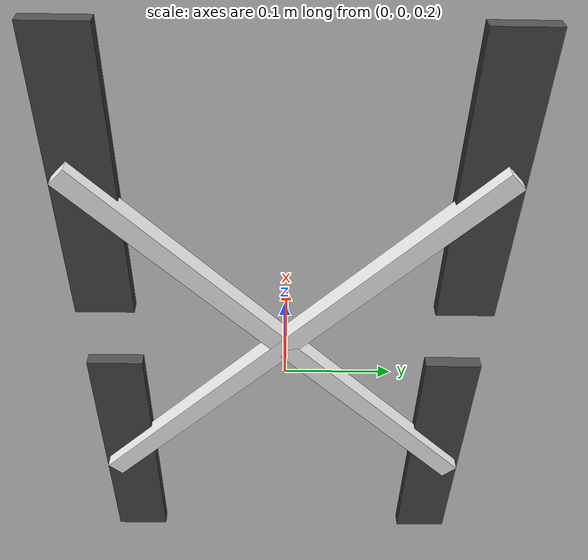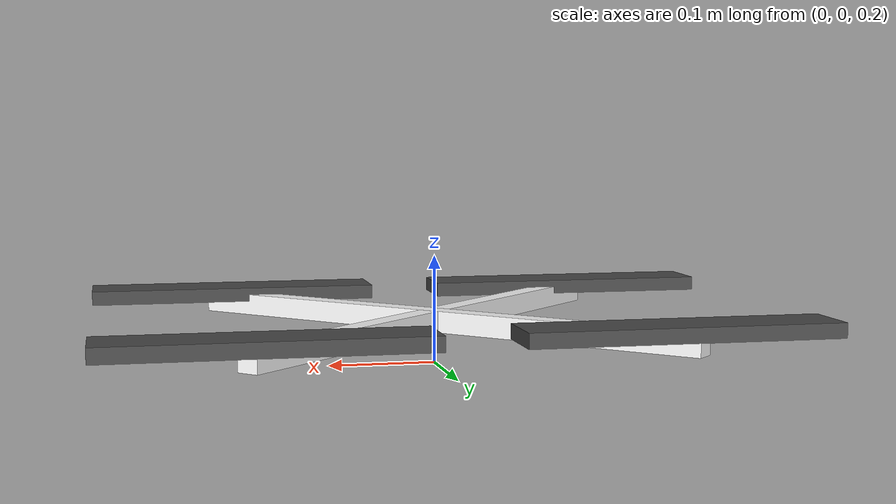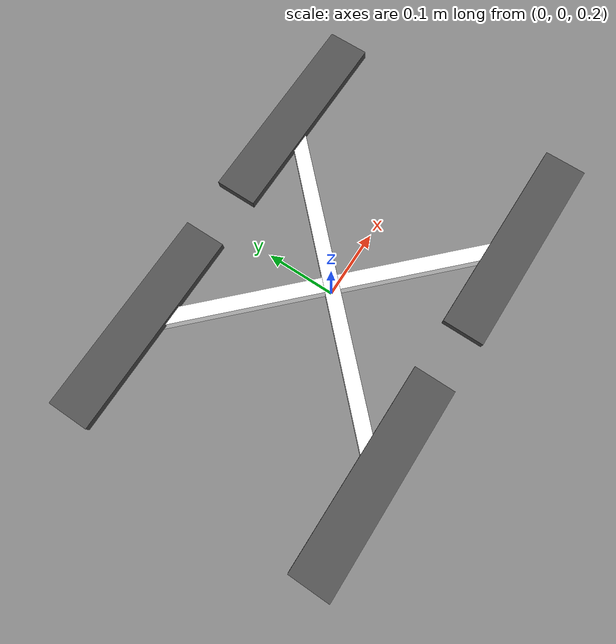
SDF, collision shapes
<?xml version="1.0" encoding="UTF-8"?>
<sdf version='1.9'>
  <model name='custom'>
    <pose>0 0 .24 0 0 0</pose>
    <self_collide>false</self_collide>
    <static>false</static>
    <link name="base_link">
      <inertial>
        <mass>2.0</mass>
        <inertia>
          <ixx>0.02166666666666667</ixx>
          <ixy>0</ixy>
          <ixz>0</ixz>
          <iyy>0.02166666666666667</iyy>
          <iyz>0</iyz>
          <izz>0.04000000000000001</izz>
        </inertia>
      </inertial>
      <gravity>true</gravity>
      <velocity_decay/>
      <visual name="napoli">
        <pose>0 0 .013 0 0 0</pose>
        <cast_shadows>false</cast_shadows>
        <geometry>
          <plane>
            <normal>0 0 1</normal>
            <size>.13 .14</size>
          </plane>
        </geometry>
        <material>
          <diffuse>1.0 1.0 1.0</diffuse>
          <specular>1.0 1.0 1.0</specular>
          <pbr>
            <metal>
              <albedo_map>model://custom/materials/textures/napoli.png</albedo_map>
            </metal>
          </pbr>
        </material>
      </visual>
      <visual name="stick_visual1">
        <pose>0 0 0 0 0 -0.785398</pose>
        <geometry>
          <box>
            <size>0.54 0.02 0.02</size>
          </box>
        </geometry>
      </visual>
      <visual name="stick_visual2">
        <pose>0 0 0 0 0 0.785398</pose>
        <geometry>
          <box>
            <size>0.54 0.02 0.02</size>
          </box>
        </geometry>
      </visual>
      <collision name="stick_collision_1_test">
      <pose>0 0 0 0 0 -0.785398</pose>
        <geometry>
          <box>
            <size>0.54 0.02 0.02</size>
          </box>
        </geometry>
      </collision>
      <collision name="stick_collision_2_test">
        <pose>0 0 0 0 0 0.785398</pose>
          <geometry>
            <box>
              <size>0.54 0.02 0.02</size>
            </box>
          </geometry>
      </collision>

      <sensor name="air_pressure_sensor" type="air_pressure">
        <always_on>1</always_on>
        <update_rate>50</update_rate>
        <air_pressure>
          <!-- Noise modeled after BMP390 -->
          <pressure>
            <noise type="gaussian">
              <mean>0</mean>
              <stddev>3</stddev>
            </noise>
          </pressure>
        </air_pressure>
      </sensor>
      <sensor name="magnetometer_sensor" type="magnetometer">
        <always_on>1</always_on>
        <update_rate>100</update_rate>
        <magnetometer>
          <!-- TODO: update to fix units and coordinate system when we move past Harmonic -->
          <!-- See https://github.com/gazebosim/gz-sim/pull/2460 -->
          <!-- 3mgauss RMS: NOTE: noise is in tesla but sensor reports data in gauss -->
          <!-- Noise modeled after IIS2MDC -->
          <x>
            <noise type="gaussian">
              <stddev>0.0001</stddev>
            </noise>
          </x>
          <y>
            <noise type="gaussian">
              <stddev>0.0001</stddev>
            </noise>
          </y>
          <z>
            <noise type="gaussian">
              <stddev>0.0001</stddev>
            </noise>
          </z>
        </magnetometer>
      </sensor>
      <sensor name="imu_sensor" type="imu">
        <always_on>1</always_on>
        <update_rate>250</update_rate>
        <imu>
          <angular_velocity>
            <!-- Noise modeled after IIM42653 -->
            <!-- 0.05 deg/s converted to rad/s -->
            <x>
              <noise type="gaussian">
                <mean>0.0</mean>
                <stddev>0.0008726646</stddev>
              </noise>
            </x>
            <y>
              <noise type="gaussian">
                <mean>0.0</mean>
                <stddev>0.0008726646</stddev>
              </noise>
            </y>
            <z>
              <noise type="gaussian">
                <mean>0.0</mean>
                <stddev>0.0008726646</stddev>
              </noise>
            </z>
          </angular_velocity>
          <linear_acceleration>
            <!-- Noise modeled after IIM42653 -->
            <!-- X & Y axis: 0.65 mg-rms converted to m/ss -->
            <x>
              <noise type="gaussian">
                <mean>0.0</mean>
                <stddev>0.00637</stddev>
              </noise>
            </x>
            <y>
              <noise type="gaussian">
                <mean>0.0</mean>
                <stddev>0.00637</stddev>
              </noise>
            </y>
            <!-- Z axis: 0.70 mg-rms converted to m/ss-->
            <z>
              <noise type="gaussian">
                <mean>0.0</mean>
                <stddev>0.00686</stddev>
              </noise>
            </z>
          </linear_acceleration>
        </imu>
      </sensor>
      <sensor name="navsat_sensor" type="navsat">
        <always_on>1</always_on>
        <update_rate>30</update_rate>
      </sensor>
    </link>
    <link name="rotor_0">
      <gravity>true</gravity>
      <self_collide>false</self_collide>
      <velocity_decay/>
      <pose>0.174 -0.174 0.04 0 0 0</pose>
      <inertial>
          <mass>0.016076923076923075</mass>
          <inertia>
            <ixx>3.8464910483993325e-07</ixx>
            <iyy>2.6115851691700804e-05</iyy>
            <izz>2.649858234714004e-05</izz>
          </inertia>
        </inertial>
      <visual name="rotor_0_visual">
        <pose>-0.022 -0.14638461538461536 -0.016 0 0 0</pose>
        <geometry>
          <mesh>
            <scale>0.8461538461538461 0.8461538461538461 0.8461538461538461</scale>
            <uri>model://custom/meshes/1345_prop_ccw.stl</uri>
          </mesh>
        </geometry>
        <material>
          <script>
            <name>Gazebo/DarkGrey</name>
            <uri>file://media/materials/scripts/gazebo.material</uri>
          </script>
        </material>
      </visual>
      <visual name="rotor_0_visual_motor_bell">
        <pose>0 0 -.032 0 0 0</pose>
        <geometry>
          <mesh>
            <scale>1 1 1</scale>
            <uri>model://custom/meshes/5010Bell.dae</uri>
          </mesh>
        </geometry>
      </visual>
      <collision name="rotor_0_collision">
        <pose>0 0 -0.03 0 0 0 </pose>
        <geometry>
          <box>
            <size>0.2792307692307692 0.056923076923076923 0.013461538461538462</size>
          </box>
        </geometry>
      </collision>
    </link>
    <joint name="rotor_0_joint" type="revolute">
      <parent>base_link</parent>
      <child>rotor_0</child>
      <axis>
        <xyz>0 0 1</xyz>
      </axis>
    </joint>
    <link name="rotor_1">
      <gravity>true</gravity>
      <self_collide>false</self_collide>
      <velocity_decay/>
      <pose>-0.174 0.174 0.04 0 0 0</pose>
      <inertial>
          <mass>0.016076923076923075</mass>
          <inertia>
            <ixx>3.8464910483993325e-07</ixx>
            <iyy>2.6115851691700804e-05</iyy>
            <izz>2.649858234714004e-05</izz>
          </inertia>
        </inertial>
      <visual name="rotor_1_visual">
        <pose>-0.022 -0.14638461538461536 -0.016 0 0 0</pose>
        <geometry>
          <mesh>
            <scale>0.8461538461538461 0.8461538461538461 0.8461538461538461</scale>
            <uri>model://custom/meshes/1345_prop_ccw.stl</uri>
          </mesh>
        </geometry>
        <material>
          <script>
            <name>Gazebo/DarkGrey</name>
            <uri>file://media/materials/scripts/gazebo.material</uri>
          </script>
        </material>
      </visual>
      <visual name="rotor_1_visual_motor_top">
        <pose>0 0 -.032 0 0 0</pose>
        <geometry>
          <mesh>
            <scale>1 1 1</scale>
            <uri>model://custom/meshes/5010Bell.dae</uri>
          </mesh>
        </geometry>
      </visual>
      <collision name="rotor_1_collision">
        <pose>0 0 -0.03 0 0 0 </pose>
        <geometry>
          <box>
            <size>0.2792307692307692 0.056923076923076923 0.013461538461538462</size>
          </box>
        </geometry>
      </collision>
    </link>
    <joint name="rotor_1_joint" type="revolute">
      <parent>base_link</parent>
      <child>rotor_1</child>
      <axis>
        <xyz>0 0 1</xyz>
      </axis>
    </joint>
    <link name="rotor_2">
      <gravity>true</gravity>
      <self_collide>false</self_collide>
      <velocity_decay/>
      <pose>0.174 0.174 0.04 0 0 0</pose>
      <inertial>
          <mass>0.016076923076923075</mass>
          <inertia>
            <ixx>3.8464910483993325e-07</ixx>
            <iyy>2.6115851691700804e-05</iyy>
            <izz>2.649858234714004e-05</izz>
          </inertia>
        </inertial>
      <visual name="rotor_2_visual">
        <pose>-0.022 -0.14638461538461536 -0.016 0 0 0</pose>
        <geometry>
          <mesh>
            <scale>0.8461538461538461 0.8461538461538461 0.8461538461538461</scale>
            <uri>model://custom/meshes/1345_prop_cw.stl</uri>
          </mesh>
        </geometry>
        <material>
          <script>
            <name>Gazebo/DarkGrey</name>
            <uri>file://media/materials/scripts/gazebo.material</uri>
          </script>
        </material>
      </visual>
      <visual name="rotor_2_visual_motor_top">
        <pose>0 0 -.032 0 0 0</pose>
        <geometry>
          <mesh>
            <scale>1 1 1</scale>
            <uri>model://custom/meshes/5010Bell.dae</uri>
          </mesh>
        </geometry>
      </visual>
      <collision name="rotor_2_collision">
        <pose>0 0 -0.03 0 0 0 </pose>
        <geometry>
          <box>
            <size>0.2792307692307692 0.056923076923076923 0.013461538461538462</size>
          </box>
        </geometry>
      </collision>
    </link>
    <joint name="rotor_2_joint" type="revolute">
      <parent>base_link</parent>
      <child>rotor_2</child>
      <axis>
        <xyz>0 0 1</xyz>
      </axis>
    </joint>
    <link name="rotor_3">
      <gravity>true</gravity>
      <self_collide>false</self_collide>
      <velocity_decay/>
      <pose>-0.174 -0.174 0.04 0 0 0</pose>
      <inertial>
          <mass>0.016076923076923075</mass>
          <inertia>
            <ixx>3.8464910483993325e-07</ixx>
            <iyy>2.6115851691700804e-05</iyy>
            <izz>2.649858234714004e-05</izz>
          </inertia>
        </inertial>
      <visual name="rotor_3_visual">
        <pose>-0.022 -0.14638461538461536 -0.016 0 0 0</pose>
        <geometry>
          <mesh>
            <scale>0.8461538461538461 0.8461538461538461 0.8461538461538461</scale>
            <uri>model://custom/meshes/1345_prop_cw.stl</uri>
          </mesh>
        </geometry>
        <material>
          <script>
            <name>Gazebo/DarkGrey</name>
            <uri>file://media/materials/scripts/gazebo.material</uri>
          </script>
        </material>
      </visual>
      <visual name="rotor_3_visual_motor_top">
        <pose>0 0 -.032 0 0 0</pose>
        <geometry>
          <mesh>
            <scale>1 1 1</scale>
            <uri>model://custom/meshes/5010Bell.dae</uri>
          </mesh>
        </geometry>
      </visual>
      <collision name="rotor_3_collision">
        <pose>0 0 -0.03 0 0 0 </pose>
        <geometry>
          <box>
            <size>0.2792307692307692 0.056923076923076923 0.013461538461538462</size>
          </box>
        </geometry>
      </collision>
    </link>
    <joint name="rotor_3_joint" type="revolute">
      <parent>base_link</parent>
      <child>rotor_3</child>
      <axis>
        <xyz>0 0 1</xyz>
      </axis>
    </joint>
    <plugin filename="gz-sim-multicopter-motor-model-system" name="gz::sim::systems::MulticopterMotorModel">
      <jointName>rotor_0_joint</jointName>
      <linkName>rotor_0</linkName>
      <turningDirection>ccw</turningDirection>
      <timeConstantUp>0.0125</timeConstantUp>
      <timeConstantDown>0.025</timeConstantDown>
      <maxRotVelocity>1000.0</maxRotVelocity>
      <motorConstant>8.54858e-06</motorConstant>
      <momentConstant>0.016</momentConstant>
      <commandSubTopic>command/motor_speed</commandSubTopic>
      <motorNumber>0</motorNumber>
      <rotorDragCoefficient>8.06428e-05</rotorDragCoefficient>
      <rollingMomentCoefficient>1e-06</rollingMomentCoefficient>
      <rotorVelocitySlowdownSim>10</rotorVelocitySlowdownSim>
      <motorType>velocity</motorType>
    </plugin>
    <plugin filename="gz-sim-multicopter-motor-model-system" name="gz::sim::systems::MulticopterMotorModel">
      <jointName>rotor_1_joint</jointName>
      <linkName>rotor_1</linkName>
      <turningDirection>ccw</turningDirection>
      <timeConstantUp>0.0125</timeConstantUp>
      <timeConstantDown>0.025</timeConstantDown>
      <maxRotVelocity>1000.0</maxRotVelocity>
      <motorConstant>8.54858e-06</motorConstant>
      <momentConstant>0.016</momentConstant>
      <commandSubTopic>command/motor_speed</commandSubTopic>
      <motorNumber>1</motorNumber>
      <rotorDragCoefficient>8.06428e-05</rotorDragCoefficient>
      <rollingMomentCoefficient>1e-06</rollingMomentCoefficient>
      <rotorVelocitySlowdownSim>10</rotorVelocitySlowdownSim>
      <motorType>velocity</motorType>
    </plugin>
    <plugin filename="gz-sim-multicopter-motor-model-system" name="gz::sim::systems::MulticopterMotorModel">
      <jointName>rotor_2_joint</jointName>
      <linkName>rotor_2</linkName>
      <turningDirection>cw</turningDirection>
      <timeConstantUp>0.0125</timeConstantUp>
      <timeConstantDown>0.025</timeConstantDown>
      <maxRotVelocity>1000.0</maxRotVelocity>
      <motorConstant>8.54858e-06</motorConstant>
      <momentConstant>0.016</momentConstant>
      <commandSubTopic>command/motor_speed</commandSubTopic>
      <motorNumber>2</motorNumber>
      <rotorDragCoefficient>8.06428e-05</rotorDragCoefficient>
      <rollingMomentCoefficient>1e-06</rollingMomentCoefficient>
      <rotorVelocitySlowdownSim>10</rotorVelocitySlowdownSim>
      <motorType>velocity</motorType>
    </plugin>
    <plugin filename="gz-sim-multicopter-motor-model-system" name="gz::sim::systems::MulticopterMotorModel">
      <jointName>rotor_3_joint</jointName>
      <linkName>rotor_3</linkName>
      <turningDirection>cw</turningDirection>
      <timeConstantUp>0.0125</timeConstantUp>
      <timeConstantDown>0.025</timeConstantDown>
      <maxRotVelocity>1000.0</maxRotVelocity>
      <motorConstant>8.54858e-06</motorConstant>
      <momentConstant>0.016</momentConstant>
      <commandSubTopic>command/motor_speed</commandSubTopic>
      <motorNumber>3</motorNumber>
      <rotorDragCoefficient>8.06428e-05</rotorDragCoefficient>
      <rollingMomentCoefficient>1e-06</rollingMomentCoefficient>
      <rotorVelocitySlowdownSim>10</rotorVelocitySlowdownSim>
      <motorType>velocity</motorType>
    </plugin>
  </model>
</sdf>
